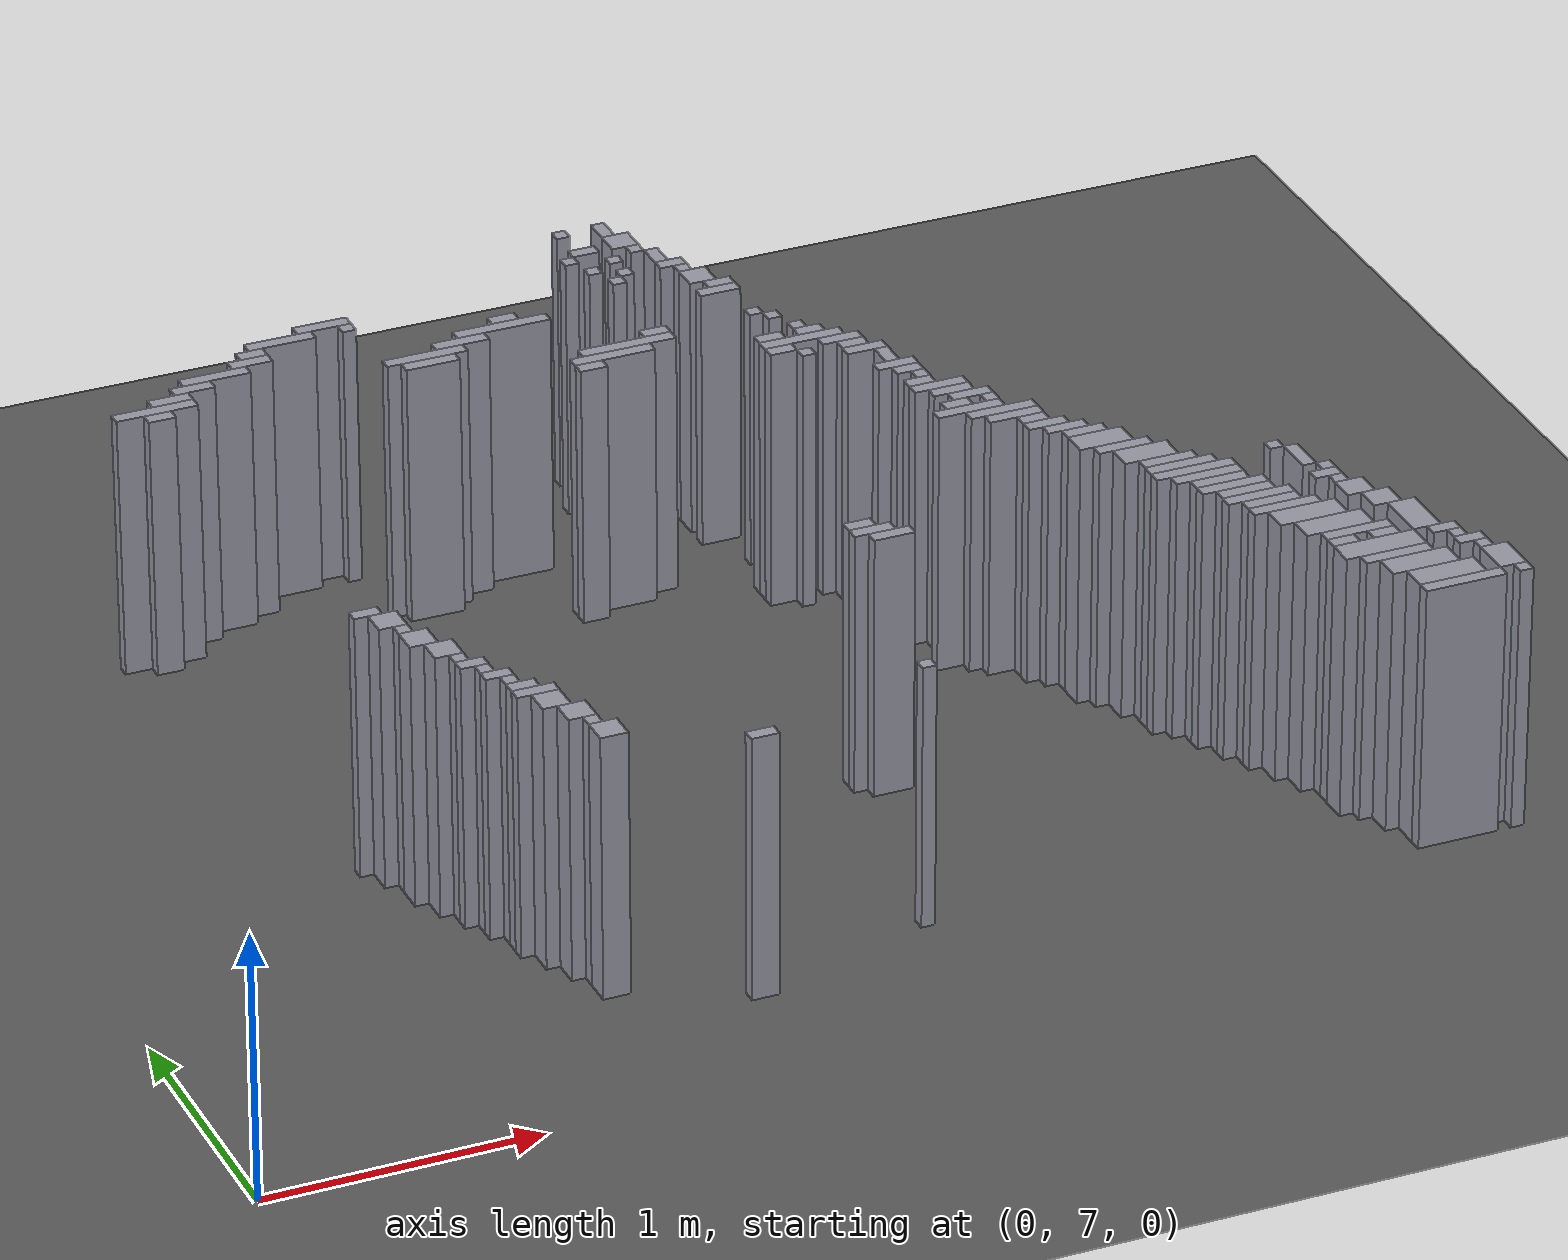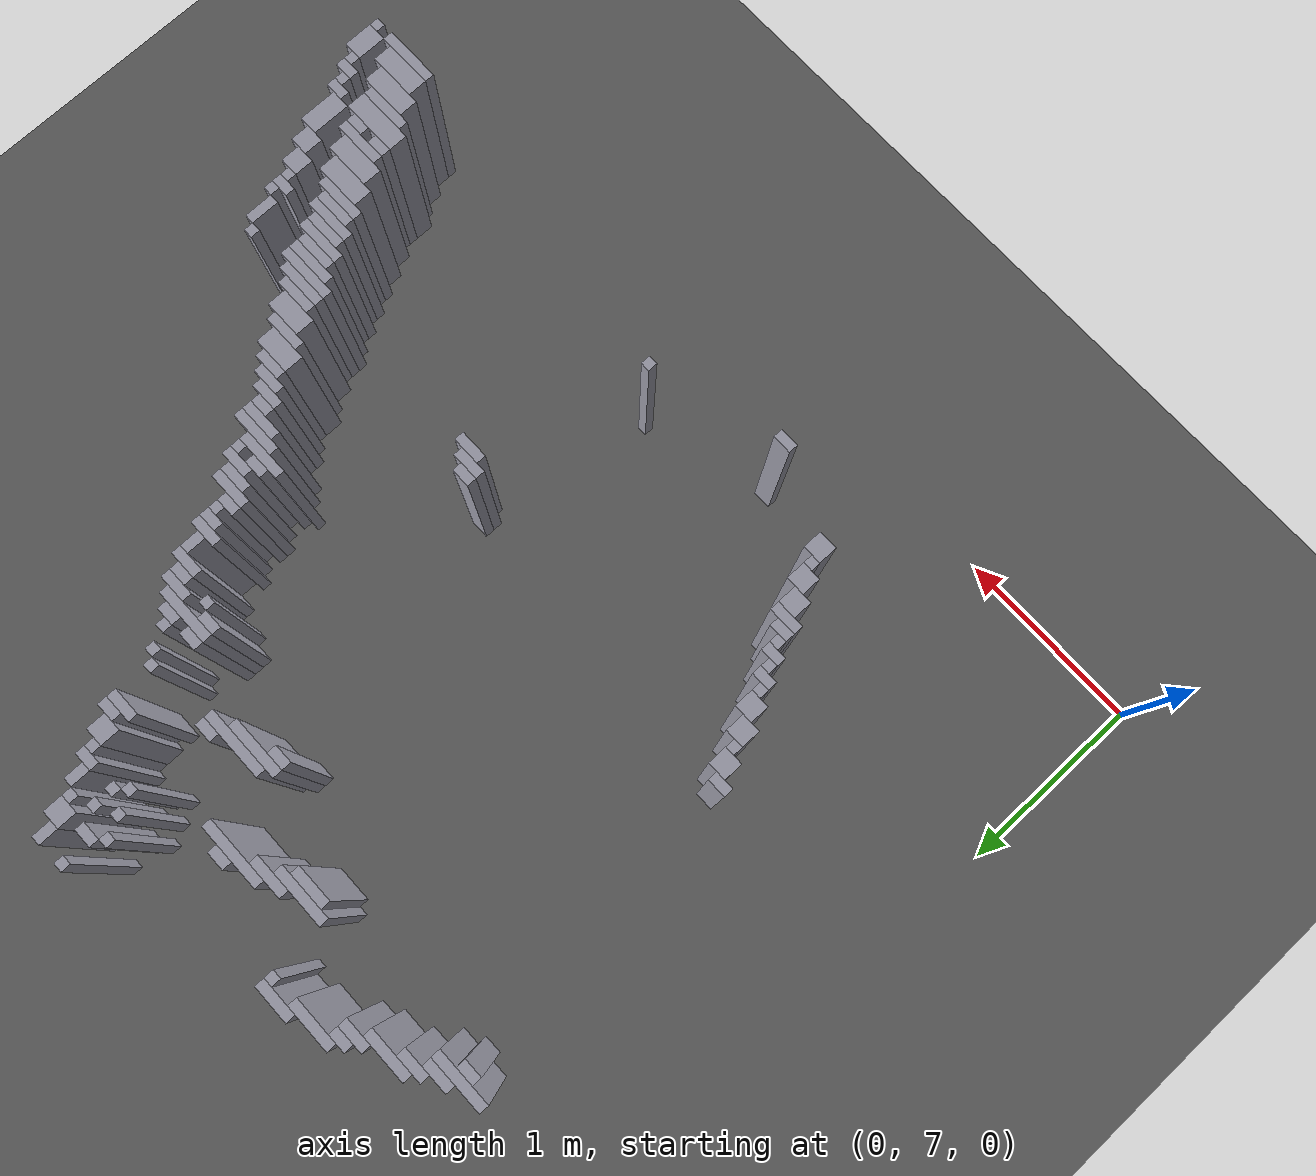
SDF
<sdf version="1.8">
 <world name="dimi">
  <model name="ground">
   <static>true</static>
   <link name="ground_link">
    <collision name="c"><geometry><plane><normal>0 0 1</normal><size>60 60</size></plane></geometry></collision>
    <visual name="v">
     <geometry><plane><normal>0 0 1</normal><size>60 60</size></plane></geometry>
     <material><ambient>0.3 0.3 0.3 1</ambient><diffuse>0.35 0.35 0.35 1</diffuse></material>
    </visual>
   </link>
  </model>
  <model name="walls">
   <static>true</static>
   <link name="wall_0">
    <pose>2.7080 11.0200 0.5000 0 0 0</pose>
    <collision name="c"><geometry><box><size>0.0500 0.0500 1.0000</size></box></geometry></collision>
    <visual name="v">
     <geometry><box><size>0.0500 0.0500 1.0000</size></box></geometry>
     <material><ambient>0.5 0.5 0.55 1</ambient><diffuse>0.6 0.6 0.65 1</diffuse></material>
    </visual>
   </link>
   <link name="wall_1">
    <pose>2.8580 10.9950 0.5000 0 0 0</pose>
    <collision name="c"><geometry><box><size>0.0500 0.1000 1.0000</size></box></geometry></collision>
    <visual name="v">
     <geometry><box><size>0.0500 0.1000 1.0000</size></box></geometry>
     <material><ambient>0.5 0.5 0.55 1</ambient><diffuse>0.6 0.6 0.65 1</diffuse></material>
    </visual>
   </link>
   <link name="wall_2">
    <pose>2.8830 10.8950 0.5000 0 0 0</pose>
    <collision name="c"><geometry><box><size>0.1000 0.1000 1.0000</size></box></geometry></collision>
    <visual name="v">
     <geometry><box><size>0.1000 0.1000 1.0000</size></box></geometry>
     <material><ambient>0.5 0.5 0.55 1</ambient><diffuse>0.6 0.6 0.65 1</diffuse></material>
    </visual>
   </link>
   <link name="wall_3">
    <pose>2.7330 10.8700 0.5000 0 0 0</pose>
    <collision name="c"><geometry><box><size>0.1000 0.0500 1.0000</size></box></geometry></collision>
    <visual name="v">
     <geometry><box><size>0.1000 0.0500 1.0000</size></box></geometry>
     <material><ambient>0.5 0.5 0.55 1</ambient><diffuse>0.6 0.6 0.65 1</diffuse></material>
    </visual>
   </link>
   <link name="wall_4">
    <pose>2.6580 10.8200 0.5000 0 0 0</pose>
    <collision name="c"><geometry><box><size>0.0500 0.0500 1.0000</size></box></geometry></collision>
    <visual name="v">
     <geometry><box><size>0.0500 0.0500 1.0000</size></box></geometry>
     <material><ambient>0.5 0.5 0.55 1</ambient><diffuse>0.6 0.6 0.65 1</diffuse></material>
    </visual>
   </link>
   <link name="wall_5">
    <pose>2.9080 10.8200 0.5000 0 0 0</pose>
    <collision name="c"><geometry><box><size>0.0500 0.0500 1.0000</size></box></geometry></collision>
    <visual name="v">
     <geometry><box><size>0.0500 0.0500 1.0000</size></box></geometry>
     <material><ambient>0.5 0.5 0.55 1</ambient><diffuse>0.6 0.6 0.65 1</diffuse></material>
    </visual>
   </link>
   <link name="wall_6">
    <pose>2.8080 10.7700 0.5000 0 0 0</pose>
    <collision name="c"><geometry><box><size>0.0500 0.0500 1.0000</size></box></geometry></collision>
    <visual name="v">
     <geometry><box><size>0.0500 0.0500 1.0000</size></box></geometry>
     <material><ambient>0.5 0.5 0.55 1</ambient><diffuse>0.6 0.6 0.65 1</diffuse></material>
    </visual>
   </link>
   <link name="wall_7">
    <pose>2.9580 10.7450 0.5000 0 0 0</pose>
    <collision name="c"><geometry><box><size>0.0500 0.1000 1.0000</size></box></geometry></collision>
    <visual name="v">
     <geometry><box><size>0.0500 0.1000 1.0000</size></box></geometry>
     <material><ambient>0.5 0.5 0.55 1</ambient><diffuse>0.6 0.6 0.65 1</diffuse></material>
    </visual>
   </link>
   <link name="wall_8">
    <pose>1.6830 10.7200 0.5000 0 0 0</pose>
    <collision name="c"><geometry><box><size>0.2000 0.0500 1.0000</size></box></geometry></collision>
    <visual name="v">
     <geometry><box><size>0.2000 0.0500 1.0000</size></box></geometry>
     <material><ambient>0.5 0.5 0.55 1</ambient><diffuse>0.6 0.6 0.65 1</diffuse></material>
    </visual>
   </link>
   <link name="wall_9">
    <pose>2.7080 10.7200 0.5000 0 0 0</pose>
    <collision name="c"><geometry><box><size>0.0500 0.0500 1.0000</size></box></geometry></collision>
    <visual name="v">
     <geometry><box><size>0.0500 0.0500 1.0000</size></box></geometry>
     <material><ambient>0.5 0.5 0.55 1</ambient><diffuse>0.6 0.6 0.65 1</diffuse></material>
    </visual>
   </link>
   <link name="wall_10">
    <pose>1.5080 10.6700 0.5000 0 0 0</pose>
    <collision name="c"><geometry><box><size>0.2500 0.0500 1.0000</size></box></geometry></collision>
    <visual name="v">
     <geometry><box><size>0.2500 0.0500 1.0000</size></box></geometry>
     <material><ambient>0.5 0.5 0.55 1</ambient><diffuse>0.6 0.6 0.65 1</diffuse></material>
    </visual>
   </link>
   <link name="wall_11">
    <pose>1.7580 10.6700 0.5000 0 0 0</pose>
    <collision name="c"><geometry><box><size>0.0500 0.0500 1.0000</size></box></geometry></collision>
    <visual name="v">
     <geometry><box><size>0.0500 0.0500 1.0000</size></box></geometry>
     <material><ambient>0.5 0.5 0.55 1</ambient><diffuse>0.6 0.6 0.65 1</diffuse></material>
    </visual>
   </link>
   <link name="wall_12">
    <pose>2.8080 10.6700 0.5000 0 0 0</pose>
    <collision name="c"><geometry><box><size>0.0500 0.0500 1.0000</size></box></geometry></collision>
    <visual name="v">
     <geometry><box><size>0.0500 0.0500 1.0000</size></box></geometry>
     <material><ambient>0.5 0.5 0.55 1</ambient><diffuse>0.6 0.6 0.65 1</diffuse></material>
    </visual>
   </link>
   <link name="wall_13">
    <pose>2.9830 10.6700 0.5000 0 0 0</pose>
    <collision name="c"><geometry><box><size>0.1000 0.0500 1.0000</size></box></geometry></collision>
    <visual name="v">
     <geometry><box><size>0.1000 0.0500 1.0000</size></box></geometry>
     <material><ambient>0.5 0.5 0.55 1</ambient><diffuse>0.6 0.6 0.65 1</diffuse></material>
    </visual>
   </link>
   <link name="wall_14">
    <pose>1.3830 10.6200 0.5000 0 0 0</pose>
    <collision name="c"><geometry><box><size>0.1000 0.0500 1.0000</size></box></geometry></collision>
    <visual name="v">
     <geometry><box><size>0.1000 0.0500 1.0000</size></box></geometry>
     <material><ambient>0.5 0.5 0.55 1</ambient><diffuse>0.6 0.6 0.65 1</diffuse></material>
    </visual>
   </link>
   <link name="wall_15">
    <pose>2.7580 10.6200 0.5000 0 0 0</pose>
    <collision name="c"><geometry><box><size>0.0500 0.0500 1.0000</size></box></geometry></collision>
    <visual name="v">
     <geometry><box><size>0.0500 0.0500 1.0000</size></box></geometry>
     <material><ambient>0.5 0.5 0.55 1</ambient><diffuse>0.6 0.6 0.65 1</diffuse></material>
    </visual>
   </link>
   <link name="wall_16">
    <pose>3.0080 10.6200 0.5000 0 0 0</pose>
    <collision name="c"><geometry><box><size>0.0500 0.0500 1.0000</size></box></geometry></collision>
    <visual name="v">
     <geometry><box><size>0.0500 0.0500 1.0000</size></box></geometry>
     <material><ambient>0.5 0.5 0.55 1</ambient><diffuse>0.6 0.6 0.65 1</diffuse></material>
    </visual>
   </link>
   <link name="wall_17">
    <pose>1.3580 10.5700 0.5000 0 0 0</pose>
    <collision name="c"><geometry><box><size>0.1500 0.0500 1.0000</size></box></geometry></collision>
    <visual name="v">
     <geometry><box><size>0.1500 0.0500 1.0000</size></box></geometry>
     <material><ambient>0.5 0.5 0.55 1</ambient><diffuse>0.6 0.6 0.65 1</diffuse></material>
    </visual>
   </link>
   <link name="wall_18">
    <pose>3.0330 10.5450 0.5000 0 0 0</pose>
    <collision name="c"><geometry><box><size>0.1000 0.1000 1.0000</size></box></geometry></collision>
    <visual name="v">
     <geometry><box><size>0.1000 0.1000 1.0000</size></box></geometry>
     <material><ambient>0.5 0.5 0.55 1</ambient><diffuse>0.6 0.6 0.65 1</diffuse></material>
    </visual>
   </link>
   <link name="wall_19">
    <pose>1.2080 10.5200 0.5000 0 0 0</pose>
    <collision name="c"><geometry><box><size>0.2500 0.0500 1.0000</size></box></geometry></collision>
    <visual name="v">
     <geometry><box><size>0.2500 0.0500 1.0000</size></box></geometry>
     <material><ambient>0.5 0.5 0.55 1</ambient><diffuse>0.6 0.6 0.65 1</diffuse></material>
    </visual>
   </link>
   <link name="wall_20">
    <pose>2.2830 10.5200 0.5000 0 0 0</pose>
    <collision name="c"><geometry><box><size>0.1000 0.0500 1.0000</size></box></geometry></collision>
    <visual name="v">
     <geometry><box><size>0.1000 0.0500 1.0000</size></box></geometry>
     <material><ambient>0.5 0.5 0.55 1</ambient><diffuse>0.6 0.6 0.65 1</diffuse></material>
    </visual>
   </link>
   <link name="wall_21">
    <pose>1.1080 10.4700 0.5000 0 0 0</pose>
    <collision name="c"><geometry><box><size>0.1500 0.0500 1.0000</size></box></geometry></collision>
    <visual name="v">
     <geometry><box><size>0.1500 0.0500 1.0000</size></box></geometry>
     <material><ambient>0.5 0.5 0.55 1</ambient><diffuse>0.6 0.6 0.65 1</diffuse></material>
    </visual>
   </link>
   <link name="wall_22">
    <pose>2.2580 10.4700 0.5000 0 0 0</pose>
    <collision name="c"><geometry><box><size>0.3500 0.0500 1.0000</size></box></geometry></collision>
    <visual name="v">
     <geometry><box><size>0.3500 0.0500 1.0000</size></box></geometry>
     <material><ambient>0.5 0.5 0.55 1</ambient><diffuse>0.6 0.6 0.65 1</diffuse></material>
    </visual>
   </link>
   <link name="wall_23">
    <pose>3.0830 10.4700 0.5000 0 0 0</pose>
    <collision name="c"><geometry><box><size>0.1000 0.0500 1.0000</size></box></geometry></collision>
    <visual name="v">
     <geometry><box><size>0.1000 0.0500 1.0000</size></box></geometry>
     <material><ambient>0.5 0.5 0.55 1</ambient><diffuse>0.6 0.6 0.65 1</diffuse></material>
    </visual>
   </link>
   <link name="wall_24">
    <pose>1.0080 10.4200 0.5000 0 0 0</pose>
    <collision name="c"><geometry><box><size>0.1500 0.0500 1.0000</size></box></geometry></collision>
    <visual name="v">
     <geometry><box><size>0.1500 0.0500 1.0000</size></box></geometry>
     <material><ambient>0.5 0.5 0.55 1</ambient><diffuse>0.6 0.6 0.65 1</diffuse></material>
    </visual>
   </link>
   <link name="wall_25">
    <pose>2.0830 10.4200 0.5000 0 0 0</pose>
    <collision name="c"><geometry><box><size>0.2000 0.0500 1.0000</size></box></geometry></collision>
    <visual name="v">
     <geometry><box><size>0.2000 0.0500 1.0000</size></box></geometry>
     <material><ambient>0.5 0.5 0.55 1</ambient><diffuse>0.6 0.6 0.65 1</diffuse></material>
    </visual>
   </link>
   <link name="wall_26">
    <pose>3.0580 10.4200 0.5000 0 0 0</pose>
    <collision name="c"><geometry><box><size>0.1500 0.0500 1.0000</size></box></geometry></collision>
    <visual name="v">
     <geometry><box><size>0.1500 0.0500 1.0000</size></box></geometry>
     <material><ambient>0.5 0.5 0.55 1</ambient><diffuse>0.6 0.6 0.65 1</diffuse></material>
    </visual>
   </link>
   <link name="wall_27">
    <pose>0.9330 10.3700 0.5000 0 0 0</pose>
    <collision name="c"><geometry><box><size>0.3000 0.0500 1.0000</size></box></geometry></collision>
    <visual name="v">
     <geometry><box><size>0.3000 0.0500 1.0000</size></box></geometry>
     <material><ambient>0.5 0.5 0.55 1</ambient><diffuse>0.6 0.6 0.65 1</diffuse></material>
    </visual>
   </link>
   <link name="wall_28">
    <pose>1.9330 10.3700 0.5000 0 0 0</pose>
    <collision name="c"><geometry><box><size>0.3000 0.0500 1.0000</size></box></geometry></collision>
    <visual name="v">
     <geometry><box><size>0.3000 0.0500 1.0000</size></box></geometry>
     <material><ambient>0.5 0.5 0.55 1</ambient><diffuse>0.6 0.6 0.65 1</diffuse></material>
    </visual>
   </link>
   <link name="wall_31">
    <pose>0.9330 10.3200 0.5000 0 0 0</pose>
    <collision name="c"><geometry><box><size>0.1000 0.0500 1.0000</size></box></geometry></collision>
    <visual name="v">
     <geometry><box><size>0.1000 0.0500 1.0000</size></box></geometry>
     <material><ambient>0.5 0.5 0.55 1</ambient><diffuse>0.6 0.6 0.65 1</diffuse></material>
    </visual>
   </link>
   <link name="wall_32">
    <pose>1.9330 10.3200 0.5000 0 0 0</pose>
    <collision name="c"><geometry><box><size>0.2000 0.0500 1.0000</size></box></geometry></collision>
    <visual name="v">
     <geometry><box><size>0.2000 0.0500 1.0000</size></box></geometry>
     <material><ambient>0.5 0.5 0.55 1</ambient><diffuse>0.6 0.6 0.65 1</diffuse></material>
    </visual>
   </link>
   <link name="wall_35">
    <pose>2.7330 10.2200 0.5000 0 0 0</pose>
    <collision name="c"><geometry><box><size>0.1000 0.0500 1.0000</size></box></geometry></collision>
    <visual name="v">
     <geometry><box><size>0.1000 0.0500 1.0000</size></box></geometry>
     <material><ambient>0.5 0.5 0.55 1</ambient><diffuse>0.6 0.6 0.65 1</diffuse></material>
    </visual>
   </link>
   <link name="wall_36">
    <pose>3.1080 10.2200 0.5000 0 0 0</pose>
    <collision name="c"><geometry><box><size>0.0500 0.0500 1.0000</size></box></geometry></collision>
    <visual name="v">
     <geometry><box><size>0.0500 0.0500 1.0000</size></box></geometry>
     <material><ambient>0.5 0.5 0.55 1</ambient><diffuse>0.6 0.6 0.65 1</diffuse></material>
    </visual>
   </link>
   <link name="wall_40">
    <pose>2.6080 10.1700 0.5000 0 0 0</pose>
    <collision name="c"><geometry><box><size>0.3500 0.0500 1.0000</size></box></geometry></collision>
    <visual name="v">
     <geometry><box><size>0.3500 0.0500 1.0000</size></box></geometry>
     <material><ambient>0.5 0.5 0.55 1</ambient><diffuse>0.6 0.6 0.65 1</diffuse></material>
    </visual>
   </link>
   <link name="wall_41">
    <pose>3.1580 10.1700 0.5000 0 0 0</pose>
    <collision name="c"><geometry><box><size>0.0500 0.0500 1.0000</size></box></geometry></collision>
    <visual name="v">
     <geometry><box><size>0.0500 0.0500 1.0000</size></box></geometry>
     <material><ambient>0.5 0.5 0.55 1</ambient><diffuse>0.6 0.6 0.65 1</diffuse></material>
    </visual>
   </link>
   <link name="wall_43">
    <pose>2.5330 10.1200 0.5000 0 0 0</pose>
    <collision name="c"><geometry><box><size>0.3000 0.0500 1.0000</size></box></geometry></collision>
    <visual name="v">
     <geometry><box><size>0.3000 0.0500 1.0000</size></box></geometry>
     <material><ambient>0.5 0.5 0.55 1</ambient><diffuse>0.6 0.6 0.65 1</diffuse></material>
    </visual>
   </link>
   <link name="wall_45">
    <pose>2.4330 10.0700 0.5000 0 0 0</pose>
    <collision name="c"><geometry><box><size>0.1000 0.0500 1.0000</size></box></geometry></collision>
    <visual name="v">
     <geometry><box><size>0.1000 0.0500 1.0000</size></box></geometry>
     <material><ambient>0.5 0.5 0.55 1</ambient><diffuse>0.6 0.6 0.65 1</diffuse></material>
    </visual>
   </link>
   <link name="wall_46">
    <pose>3.2080 10.0700 0.5000 0 0 0</pose>
    <collision name="c"><geometry><box><size>0.0500 0.0500 1.0000</size></box></geometry></collision>
    <visual name="v">
     <geometry><box><size>0.0500 0.0500 1.0000</size></box></geometry>
     <material><ambient>0.5 0.5 0.55 1</ambient><diffuse>0.6 0.6 0.65 1</diffuse></material>
    </visual>
   </link>
   <link name="wall_49">
    <pose>3.0830 10.0200 0.5000 0 0 0</pose>
    <collision name="c"><geometry><box><size>0.1000 0.0500 1.0000</size></box></geometry></collision>
    <visual name="v">
     <geometry><box><size>0.1000 0.0500 1.0000</size></box></geometry>
     <material><ambient>0.5 0.5 0.55 1</ambient><diffuse>0.6 0.6 0.65 1</diffuse></material>
    </visual>
   </link>
   <link name="wall_50">
    <pose>3.2330 10.0200 0.5000 0 0 0</pose>
    <collision name="c"><geometry><box><size>0.1000 0.0500 1.0000</size></box></geometry></collision>
    <visual name="v">
     <geometry><box><size>0.1000 0.0500 1.0000</size></box></geometry>
     <material><ambient>0.5 0.5 0.55 1</ambient><diffuse>0.6 0.6 0.65 1</diffuse></material>
    </visual>
   </link>
   <link name="wall_53">
    <pose>3.1830 9.9700 0.5000 0 0 0</pose>
    <collision name="c"><geometry><box><size>0.3000 0.0500 1.0000</size></box></geometry></collision>
    <visual name="v">
     <geometry><box><size>0.3000 0.0500 1.0000</size></box></geometry>
     <material><ambient>0.5 0.5 0.55 1</ambient><diffuse>0.6 0.6 0.65 1</diffuse></material>
    </visual>
   </link>
   <link name="wall_55">
    <pose>3.0830 9.9200 0.5000 0 0 0</pose>
    <collision name="c"><geometry><box><size>0.1000 0.0500 1.0000</size></box></geometry></collision>
    <visual name="v">
     <geometry><box><size>0.1000 0.0500 1.0000</size></box></geometry>
     <material><ambient>0.5 0.5 0.55 1</ambient><diffuse>0.6 0.6 0.65 1</diffuse></material>
    </visual>
   </link>
   <link name="wall_56">
    <pose>3.3080 9.9200 0.5000 0 0 0</pose>
    <collision name="c"><geometry><box><size>0.1500 0.0500 1.0000</size></box></geometry></collision>
    <visual name="v">
     <geometry><box><size>0.1500 0.0500 1.0000</size></box></geometry>
     <material><ambient>0.5 0.5 0.55 1</ambient><diffuse>0.6 0.6 0.65 1</diffuse></material>
    </visual>
   </link>
   <link name="wall_59">
    <pose>3.1580 9.8700 0.5000 0 0 0</pose>
    <collision name="c"><geometry><box><size>0.0500 0.0500 1.0000</size></box></geometry></collision>
    <visual name="v">
     <geometry><box><size>0.0500 0.0500 1.0000</size></box></geometry>
     <material><ambient>0.5 0.5 0.55 1</ambient><diffuse>0.6 0.6 0.65 1</diffuse></material>
    </visual>
   </link>
   <link name="wall_60">
    <pose>3.3330 9.8700 0.5000 0 0 0</pose>
    <collision name="c"><geometry><box><size>0.1000 0.0500 1.0000</size></box></geometry></collision>
    <visual name="v">
     <geometry><box><size>0.1000 0.0500 1.0000</size></box></geometry>
     <material><ambient>0.5 0.5 0.55 1</ambient><diffuse>0.6 0.6 0.65 1</diffuse></material>
    </visual>
   </link>
   <link name="wall_63">
    <pose>3.3580 9.8200 0.5000 0 0 0</pose>
    <collision name="c"><geometry><box><size>0.1500 0.0500 1.0000</size></box></geometry></collision>
    <visual name="v">
     <geometry><box><size>0.1500 0.0500 1.0000</size></box></geometry>
     <material><ambient>0.5 0.5 0.55 1</ambient><diffuse>0.6 0.6 0.65 1</diffuse></material>
    </visual>
   </link>
   <link name="wall_66">
    <pose>3.4080 9.7450 0.5000 0 0 0</pose>
    <collision name="c"><geometry><box><size>0.0500 0.1000 1.0000</size></box></geometry></collision>
    <visual name="v">
     <geometry><box><size>0.0500 0.1000 1.0000</size></box></geometry>
     <material><ambient>0.5 0.5 0.55 1</ambient><diffuse>0.6 0.6 0.65 1</diffuse></material>
    </visual>
   </link>
   <link name="wall_75">
    <pose>3.4080 9.6700 0.5000 0 0 0</pose>
    <collision name="c"><geometry><box><size>0.1500 0.0500 1.0000</size></box></geometry></collision>
    <visual name="v">
     <geometry><box><size>0.1500 0.0500 1.0000</size></box></geometry>
     <material><ambient>0.5 0.5 0.55 1</ambient><diffuse>0.6 0.6 0.65 1</diffuse></material>
    </visual>
   </link>
   <link name="wall_80">
    <pose>3.4330 9.6200 0.5000 0 0 0</pose>
    <collision name="c"><geometry><box><size>0.1000 0.0500 1.0000</size></box></geometry></collision>
    <visual name="v">
     <geometry><box><size>0.1000 0.0500 1.0000</size></box></geometry>
     <material><ambient>0.5 0.5 0.55 1</ambient><diffuse>0.6 0.6 0.65 1</diffuse></material>
    </visual>
   </link>
   <link name="wall_84">
    <pose>3.4580 9.5700 0.5000 0 0 0</pose>
    <collision name="c"><geometry><box><size>0.0500 0.0500 1.0000</size></box></geometry></collision>
    <visual name="v">
     <geometry><box><size>0.0500 0.0500 1.0000</size></box></geometry>
     <material><ambient>0.5 0.5 0.55 1</ambient><diffuse>0.6 0.6 0.65 1</diffuse></material>
    </visual>
   </link>
   <link name="wall_88">
    <pose>3.4330 9.5200 0.5000 0 0 0</pose>
    <collision name="c"><geometry><box><size>0.1000 0.0500 1.0000</size></box></geometry></collision>
    <visual name="v">
     <geometry><box><size>0.1000 0.0500 1.0000</size></box></geometry>
     <material><ambient>0.5 0.5 0.55 1</ambient><diffuse>0.6 0.6 0.65 1</diffuse></material>
    </visual>
   </link>
   <link name="wall_92">
    <pose>3.4830 9.4700 0.5000 0 0 0</pose>
    <collision name="c"><geometry><box><size>0.2000 0.0500 1.0000</size></box></geometry></collision>
    <visual name="v">
     <geometry><box><size>0.2000 0.0500 1.0000</size></box></geometry>
     <material><ambient>0.5 0.5 0.55 1</ambient><diffuse>0.6 0.6 0.65 1</diffuse></material>
    </visual>
   </link>
   <link name="wall_94">
    <pose>3.5080 9.4200 0.5000 0 0 0</pose>
    <collision name="c"><geometry><box><size>0.1500 0.0500 1.0000</size></box></geometry></collision>
    <visual name="v">
     <geometry><box><size>0.1500 0.0500 1.0000</size></box></geometry>
     <material><ambient>0.5 0.5 0.55 1</ambient><diffuse>0.6 0.6 0.65 1</diffuse></material>
    </visual>
   </link>
   <link name="wall_96">
    <pose>3.5580 9.3700 0.5000 0 0 0</pose>
    <collision name="c"><geometry><box><size>0.1500 0.0500 1.0000</size></box></geometry></collision>
    <visual name="v">
     <geometry><box><size>0.1500 0.0500 1.0000</size></box></geometry>
     <material><ambient>0.5 0.5 0.55 1</ambient><diffuse>0.6 0.6 0.65 1</diffuse></material>
    </visual>
   </link>
   <link name="wall_99">
    <pose>3.4830 9.3200 0.5000 0 0 0</pose>
    <collision name="c"><geometry><box><size>0.1000 0.0500 1.0000</size></box></geometry></collision>
    <visual name="v">
     <geometry><box><size>0.1000 0.0500 1.0000</size></box></geometry>
     <material><ambient>0.5 0.5 0.55 1</ambient><diffuse>0.6 0.6 0.65 1</diffuse></material>
    </visual>
   </link>
   <link name="wall_100">
    <pose>3.6080 9.3200 0.5000 0 0 0</pose>
    <collision name="c"><geometry><box><size>0.0500 0.0500 1.0000</size></box></geometry></collision>
    <visual name="v">
     <geometry><box><size>0.0500 0.0500 1.0000</size></box></geometry>
     <material><ambient>0.5 0.5 0.55 1</ambient><diffuse>0.6 0.6 0.65 1</diffuse></material>
    </visual>
   </link>
   <link name="wall_103">
    <pose>3.5080 9.2700 0.5000 0 0 0</pose>
    <collision name="c"><geometry><box><size>0.2500 0.0500 1.0000</size></box></geometry></collision>
    <visual name="v">
     <geometry><box><size>0.2500 0.0500 1.0000</size></box></geometry>
     <material><ambient>0.5 0.5 0.55 1</ambient><diffuse>0.6 0.6 0.65 1</diffuse></material>
    </visual>
   </link>
   <link name="wall_107">
    <pose>3.6080 9.2200 0.5000 0 0 0</pose>
    <collision name="c"><geometry><box><size>0.2500 0.0500 1.0000</size></box></geometry></collision>
    <visual name="v">
     <geometry><box><size>0.2500 0.0500 1.0000</size></box></geometry>
     <material><ambient>0.5 0.5 0.55 1</ambient><diffuse>0.6 0.6 0.65 1</diffuse></material>
    </visual>
   </link>
   <link name="wall_110">
    <pose>3.6330 9.1700 0.5000 0 0 0</pose>
    <collision name="c"><geometry><box><size>0.2000 0.0500 1.0000</size></box></geometry></collision>
    <visual name="v">
     <geometry><box><size>0.2000 0.0500 1.0000</size></box></geometry>
     <material><ambient>0.5 0.5 0.55 1</ambient><diffuse>0.6 0.6 0.65 1</diffuse></material>
    </visual>
   </link>
   <link name="wall_113">
    <pose>3.6830 9.1200 0.5000 0 0 0</pose>
    <collision name="c"><geometry><box><size>0.1000 0.0500 1.0000</size></box></geometry></collision>
    <visual name="v">
     <geometry><box><size>0.1000 0.0500 1.0000</size></box></geometry>
     <material><ambient>0.5 0.5 0.55 1</ambient><diffuse>0.6 0.6 0.65 1</diffuse></material>
    </visual>
   </link>
   <link name="wall_117">
    <pose>3.7080 9.0700 0.5000 0 0 0</pose>
    <collision name="c"><geometry><box><size>0.1500 0.0500 1.0000</size></box></geometry></collision>
    <visual name="v">
     <geometry><box><size>0.1500 0.0500 1.0000</size></box></geometry>
     <material><ambient>0.5 0.5 0.55 1</ambient><diffuse>0.6 0.6 0.65 1</diffuse></material>
    </visual>
   </link>
   <link name="wall_121">
    <pose>3.7580 9.0200 0.5000 0 0 0</pose>
    <collision name="c"><geometry><box><size>0.1500 0.0500 1.0000</size></box></geometry></collision>
    <visual name="v">
     <geometry><box><size>0.1500 0.0500 1.0000</size></box></geometry>
     <material><ambient>0.5 0.5 0.55 1</ambient><diffuse>0.6 0.6 0.65 1</diffuse></material>
    </visual>
   </link>
   <link name="wall_126">
    <pose>3.8080 8.9700 0.5000 0 0 0</pose>
    <collision name="c"><geometry><box><size>0.1500 0.0500 1.0000</size></box></geometry></collision>
    <visual name="v">
     <geometry><box><size>0.1500 0.0500 1.0000</size></box></geometry>
     <material><ambient>0.5 0.5 0.55 1</ambient><diffuse>0.6 0.6 0.65 1</diffuse></material>
    </visual>
   </link>
   <link name="wall_131">
    <pose>3.8330 8.8950 0.5000 0 0 0</pose>
    <collision name="c"><geometry><box><size>0.2000 0.1000 1.0000</size></box></geometry></collision>
    <visual name="v">
     <geometry><box><size>0.2000 0.1000 1.0000</size></box></geometry>
     <material><ambient>0.5 0.5 0.55 1</ambient><diffuse>0.6 0.6 0.65 1</diffuse></material>
    </visual>
   </link>
   <link name="wall_140">
    <pose>3.8830 8.8200 0.5000 0 0 0</pose>
    <collision name="c"><geometry><box><size>0.2000 0.0500 1.0000</size></box></geometry></collision>
    <visual name="v">
     <geometry><box><size>0.2000 0.0500 1.0000</size></box></geometry>
     <material><ambient>0.5 0.5 0.55 1</ambient><diffuse>0.6 0.6 0.65 1</diffuse></material>
    </visual>
   </link>
   <link name="wall_144">
    <pose>1.0830 8.7700 0.5000 0 0 0</pose>
    <collision name="c"><geometry><box><size>0.1000 0.0500 1.0000</size></box></geometry></collision>
    <visual name="v">
     <geometry><box><size>0.1000 0.0500 1.0000</size></box></geometry>
     <material><ambient>0.5 0.5 0.55 1</ambient><diffuse>0.6 0.6 0.65 1</diffuse></material>
    </visual>
   </link>
   <link name="wall_145">
    <pose>3.9330 8.7450 0.5000 0 0 0</pose>
    <collision name="c"><geometry><box><size>0.2000 0.1000 1.0000</size></box></geometry></collision>
    <visual name="v">
     <geometry><box><size>0.2000 0.1000 1.0000</size></box></geometry>
     <material><ambient>0.5 0.5 0.55 1</ambient><diffuse>0.6 0.6 0.65 1</diffuse></material>
    </visual>
   </link>
   <link name="wall_149">
    <pose>1.1330 8.6950 0.5000 0 0 0</pose>
    <collision name="c"><geometry><box><size>0.1000 0.1000 1.0000</size></box></geometry></collision>
    <visual name="v">
     <geometry><box><size>0.1000 0.1000 1.0000</size></box></geometry>
     <material><ambient>0.5 0.5 0.55 1</ambient><diffuse>0.6 0.6 0.65 1</diffuse></material>
    </visual>
   </link>
   <link name="wall_154">
    <pose>2.8330 8.6700 0.5000 0 0 0</pose>
    <collision name="c"><geometry><box><size>0.1000 0.0500 1.0000</size></box></geometry></collision>
    <visual name="v">
     <geometry><box><size>0.1000 0.0500 1.0000</size></box></geometry>
     <material><ambient>0.5 0.5 0.55 1</ambient><diffuse>0.6 0.6 0.65 1</diffuse></material>
    </visual>
   </link>
   <link name="wall_155">
    <pose>3.9830 8.6700 0.5000 0 0 0</pose>
    <collision name="c"><geometry><box><size>0.2000 0.0500 1.0000</size></box></geometry></collision>
    <visual name="v">
     <geometry><box><size>0.2000 0.0500 1.0000</size></box></geometry>
     <material><ambient>0.5 0.5 0.55 1</ambient><diffuse>0.6 0.6 0.65 1</diffuse></material>
    </visual>
   </link>
   <link name="wall_158">
    <pose>1.1580 8.6200 0.5000 0 0 0</pose>
    <collision name="c"><geometry><box><size>0.0500 0.0500 1.0000</size></box></geometry></collision>
    <visual name="v">
     <geometry><box><size>0.0500 0.0500 1.0000</size></box></geometry>
     <material><ambient>0.5 0.5 0.55 1</ambient><diffuse>0.6 0.6 0.65 1</diffuse></material>
    </visual>
   </link>
   <link name="wall_159">
    <pose>2.8580 8.6200 0.5000 0 0 0</pose>
    <collision name="c"><geometry><box><size>0.1500 0.0500 1.0000</size></box></geometry></collision>
    <visual name="v">
     <geometry><box><size>0.1500 0.0500 1.0000</size></box></geometry>
     <material><ambient>0.5 0.5 0.55 1</ambient><diffuse>0.6 0.6 0.65 1</diffuse></material>
    </visual>
   </link>
   <link name="wall_160">
    <pose>4.0080 8.6200 0.5000 0 0 0</pose>
    <collision name="c"><geometry><box><size>0.2500 0.0500 1.0000</size></box></geometry></collision>
    <visual name="v">
     <geometry><box><size>0.2500 0.0500 1.0000</size></box></geometry>
     <material><ambient>0.5 0.5 0.55 1</ambient><diffuse>0.6 0.6 0.65 1</diffuse></material>
    </visual>
   </link>
   <link name="wall_161">
    <pose>4.3580 8.6200 0.5000 0 0 0</pose>
    <collision name="c"><geometry><box><size>0.0500 0.0500 1.0000</size></box></geometry></collision>
    <visual name="v">
     <geometry><box><size>0.0500 0.0500 1.0000</size></box></geometry>
     <material><ambient>0.5 0.5 0.55 1</ambient><diffuse>0.6 0.6 0.65 1</diffuse></material>
    </visual>
   </link>
   <link name="wall_164">
    <pose>1.1830 8.5450 0.5000 0 0 0</pose>
    <collision name="c"><geometry><box><size>0.1000 0.1000 1.0000</size></box></geometry></collision>
    <visual name="v">
     <geometry><box><size>0.1000 0.1000 1.0000</size></box></geometry>
     <material><ambient>0.5 0.5 0.55 1</ambient><diffuse>0.6 0.6 0.65 1</diffuse></material>
    </visual>
   </link>
   <link name="wall_165">
    <pose>2.9080 8.5700 0.5000 0 0 0</pose>
    <collision name="c"><geometry><box><size>0.1500 0.0500 1.0000</size></box></geometry></collision>
    <visual name="v">
     <geometry><box><size>0.1500 0.0500 1.0000</size></box></geometry>
     <material><ambient>0.5 0.5 0.55 1</ambient><diffuse>0.6 0.6 0.65 1</diffuse></material>
    </visual>
   </link>
   <link name="wall_166">
    <pose>4.0330 8.5700 0.5000 0 0 0</pose>
    <collision name="c"><geometry><box><size>0.3000 0.0500 1.0000</size></box></geometry></collision>
    <visual name="v">
     <geometry><box><size>0.3000 0.0500 1.0000</size></box></geometry>
     <material><ambient>0.5 0.5 0.55 1</ambient><diffuse>0.6 0.6 0.65 1</diffuse></material>
    </visual>
   </link>
   <link name="wall_167">
    <pose>4.4080 8.5200 0.5000 0 0 0</pose>
    <collision name="c"><geometry><box><size>0.0500 0.1500 1.0000</size></box></geometry></collision>
    <visual name="v">
     <geometry><box><size>0.0500 0.1500 1.0000</size></box></geometry>
     <material><ambient>0.5 0.5 0.55 1</ambient><diffuse>0.6 0.6 0.65 1</diffuse></material>
    </visual>
   </link>
   <link name="wall_171">
    <pose>4.0580 8.5200 0.5000 0 0 0</pose>
    <collision name="c"><geometry><box><size>0.2500 0.0500 1.0000</size></box></geometry></collision>
    <visual name="v">
     <geometry><box><size>0.2500 0.0500 1.0000</size></box></geometry>
     <material><ambient>0.5 0.5 0.55 1</ambient><diffuse>0.6 0.6 0.65 1</diffuse></material>
    </visual>
   </link>
   <link name="wall_173">
    <pose>1.2330 8.4450 0.5000 0 0 0</pose>
    <collision name="c"><geometry><box><size>0.1000 0.1000 1.0000</size></box></geometry></collision>
    <visual name="v">
     <geometry><box><size>0.1000 0.1000 1.0000</size></box></geometry>
     <material><ambient>0.5 0.5 0.55 1</ambient><diffuse>0.6 0.6 0.65 1</diffuse></material>
    </visual>
   </link>
   <link name="wall_174">
    <pose>4.0830 8.4700 0.5000 0 0 0</pose>
    <collision name="c"><geometry><box><size>0.2000 0.0500 1.0000</size></box></geometry></collision>
    <visual name="v">
     <geometry><box><size>0.2000 0.0500 1.0000</size></box></geometry>
     <material><ambient>0.5 0.5 0.55 1</ambient><diffuse>0.6 0.6 0.65 1</diffuse></material>
    </visual>
   </link>
   <link name="wall_179">
    <pose>4.1080 8.4200 0.5000 0 0 0</pose>
    <collision name="c"><geometry><box><size>0.2500 0.0500 1.0000</size></box></geometry></collision>
    <visual name="v">
     <geometry><box><size>0.2500 0.0500 1.0000</size></box></geometry>
     <material><ambient>0.5 0.5 0.55 1</ambient><diffuse>0.6 0.6 0.65 1</diffuse></material>
    </visual>
   </link>
   <link name="wall_180">
    <pose>4.4580 8.4200 0.5000 0 0 0</pose>
    <collision name="c"><geometry><box><size>0.0500 0.0500 1.0000</size></box></geometry></collision>
    <visual name="v">
     <geometry><box><size>0.0500 0.0500 1.0000</size></box></geometry>
     <material><ambient>0.5 0.5 0.55 1</ambient><diffuse>0.6 0.6 0.65 1</diffuse></material>
    </visual>
   </link>
   <link name="wall_186">
    <pose>1.2580 8.3700 0.5000 0 0 0</pose>
    <collision name="c"><geometry><box><size>0.0500 0.0500 1.0000</size></box></geometry></collision>
    <visual name="v">
     <geometry><box><size>0.0500 0.0500 1.0000</size></box></geometry>
     <material><ambient>0.5 0.5 0.55 1</ambient><diffuse>0.6 0.6 0.65 1</diffuse></material>
    </visual>
   </link>
   <link name="wall_187">
    <pose>4.1330 8.3700 0.5000 0 0 0</pose>
    <collision name="c"><geometry><box><size>0.2000 0.0500 1.0000</size></box></geometry></collision>
    <visual name="v">
     <geometry><box><size>0.2000 0.0500 1.0000</size></box></geometry>
     <material><ambient>0.5 0.5 0.55 1</ambient><diffuse>0.6 0.6 0.65 1</diffuse></material>
    </visual>
   </link>
   <link name="wall_188">
    <pose>4.4330 8.3700 0.5000 0 0 0</pose>
    <collision name="c"><geometry><box><size>0.1000 0.0500 1.0000</size></box></geometry></collision>
    <visual name="v">
     <geometry><box><size>0.1000 0.0500 1.0000</size></box></geometry>
     <material><ambient>0.5 0.5 0.55 1</ambient><diffuse>0.6 0.6 0.65 1</diffuse></material>
    </visual>
   </link>
   <link name="wall_192">
    <pose>1.2830 8.3200 0.5000 0 0 0</pose>
    <collision name="c"><geometry><box><size>0.1000 0.0500 1.0000</size></box></geometry></collision>
    <visual name="v">
     <geometry><box><size>0.1000 0.0500 1.0000</size></box></geometry>
     <material><ambient>0.5 0.5 0.55 1</ambient><diffuse>0.6 0.6 0.65 1</diffuse></material>
    </visual>
   </link>
   <link name="wall_193">
    <pose>4.1580 8.3200 0.5000 0 0 0</pose>
    <collision name="c"><geometry><box><size>0.2500 0.0500 1.0000</size></box></geometry></collision>
    <visual name="v">
     <geometry><box><size>0.2500 0.0500 1.0000</size></box></geometry>
     <material><ambient>0.5 0.5 0.55 1</ambient><diffuse>0.6 0.6 0.65 1</diffuse></material>
    </visual>
   </link>
   <link name="wall_194">
    <pose>4.4580 8.3200 0.5000 0 0 0</pose>
    <collision name="c"><geometry><box><size>0.0500 0.0500 1.0000</size></box></geometry></collision>
    <visual name="v">
     <geometry><box><size>0.0500 0.0500 1.0000</size></box></geometry>
     <material><ambient>0.5 0.5 0.55 1</ambient><diffuse>0.6 0.6 0.65 1</diffuse></material>
    </visual>
   </link>
   <link name="wall_199">
    <pose>1.3080 8.2700 0.5000 0 0 0</pose>
    <collision name="c"><geometry><box><size>0.0500 0.0500 1.0000</size></box></geometry></collision>
    <visual name="v">
     <geometry><box><size>0.0500 0.0500 1.0000</size></box></geometry>
     <material><ambient>0.5 0.5 0.55 1</ambient><diffuse>0.6 0.6 0.65 1</diffuse></material>
    </visual>
   </link>
   <link name="wall_200">
    <pose>4.1830 8.2700 0.5000 0 0 0</pose>
    <collision name="c"><geometry><box><size>0.2000 0.0500 1.0000</size></box></geometry></collision>
    <visual name="v">
     <geometry><box><size>0.2000 0.0500 1.0000</size></box></geometry>
     <material><ambient>0.5 0.5 0.55 1</ambient><diffuse>0.6 0.6 0.65 1</diffuse></material>
    </visual>
   </link>
   <link name="wall_201">
    <pose>4.4830 8.2450 0.5000 0 0 0</pose>
    <collision name="c"><geometry><box><size>0.1000 0.1000 1.0000</size></box></geometry></collision>
    <visual name="v">
     <geometry><box><size>0.1000 0.1000 1.0000</size></box></geometry>
     <material><ambient>0.5 0.5 0.55 1</ambient><diffuse>0.6 0.6 0.65 1</diffuse></material>
    </visual>
   </link>
   <link name="wall_206">
    <pose>1.3330 8.2200 0.5000 0 0 0</pose>
    <collision name="c"><geometry><box><size>0.1000 0.0500 1.0000</size></box></geometry></collision>
    <visual name="v">
     <geometry><box><size>0.1000 0.0500 1.0000</size></box></geometry>
     <material><ambient>0.5 0.5 0.55 1</ambient><diffuse>0.6 0.6 0.65 1</diffuse></material>
    </visual>
   </link>
   <link name="wall_207">
    <pose>4.2080 8.2200 0.5000 0 0 0</pose>
    <collision name="c"><geometry><box><size>0.2500 0.0500 1.0000</size></box></geometry></collision>
    <visual name="v">
     <geometry><box><size>0.2500 0.0500 1.0000</size></box></geometry>
     <material><ambient>0.5 0.5 0.55 1</ambient><diffuse>0.6 0.6 0.65 1</diffuse></material>
    </visual>
   </link>
   <link name="wall_212">
    <pose>1.3580 8.1700 0.5000 0 0 0</pose>
    <collision name="c"><geometry><box><size>0.0500 0.0500 1.0000</size></box></geometry></collision>
    <visual name="v">
     <geometry><box><size>0.0500 0.0500 1.0000</size></box></geometry>
     <material><ambient>0.5 0.5 0.55 1</ambient><diffuse>0.6 0.6 0.65 1</diffuse></material>
    </visual>
   </link>
   <link name="wall_213">
    <pose>4.2580 8.1450 0.5000 0 0 0</pose>
    <collision name="c"><geometry><box><size>0.2500 0.1000 1.0000</size></box></geometry></collision>
    <visual name="v">
     <geometry><box><size>0.2500 0.1000 1.0000</size></box></geometry>
     <material><ambient>0.5 0.5 0.55 1</ambient><diffuse>0.6 0.6 0.65 1</diffuse></material>
    </visual>
   </link>
   <link name="wall_214">
    <pose>4.5330 8.1450 0.5000 0 0 0</pose>
    <collision name="c"><geometry><box><size>0.1000 0.1000 1.0000</size></box></geometry></collision>
    <visual name="v">
     <geometry><box><size>0.1000 0.1000 1.0000</size></box></geometry>
     <material><ambient>0.5 0.5 0.55 1</ambient><diffuse>0.6 0.6 0.65 1</diffuse></material>
    </visual>
   </link>
   <link name="wall_221">
    <pose>1.3830 8.1200 0.5000 0 0 0</pose>
    <collision name="c"><geometry><box><size>0.1000 0.0500 1.0000</size></box></geometry></collision>
    <visual name="v">
     <geometry><box><size>0.1000 0.0500 1.0000</size></box></geometry>
     <material><ambient>0.5 0.5 0.55 1</ambient><diffuse>0.6 0.6 0.65 1</diffuse></material>
    </visual>
   </link>
   <link name="wall_226">
    <pose>1.4080 8.0700 0.5000 0 0 0</pose>
    <collision name="c"><geometry><box><size>0.1500 0.0500 1.0000</size></box></geometry></collision>
    <visual name="v">
     <geometry><box><size>0.1500 0.0500 1.0000</size></box></geometry>
     <material><ambient>0.5 0.5 0.55 1</ambient><diffuse>0.6 0.6 0.65 1</diffuse></material>
    </visual>
   </link>
   <link name="wall_227">
    <pose>4.3080 8.0450 0.5000 0 0 0</pose>
    <collision name="c"><geometry><box><size>0.2500 0.1000 1.0000</size></box></geometry></collision>
    <visual name="v">
     <geometry><box><size>0.2500 0.1000 1.0000</size></box></geometry>
     <material><ambient>0.5 0.5 0.55 1</ambient><diffuse>0.6 0.6 0.65 1</diffuse></material>
    </visual>
   </link>
   <link name="wall_228">
    <pose>4.5830 7.9950 0.5000 0 0 0</pose>
    <collision name="c"><geometry><box><size>0.1000 0.2000 1.0000</size></box></geometry></collision>
    <visual name="v">
     <geometry><box><size>0.1000 0.2000 1.0000</size></box></geometry>
     <material><ambient>0.5 0.5 0.55 1</ambient><diffuse>0.6 0.6 0.65 1</diffuse></material>
    </visual>
   </link>
   <link name="wall_232">
    <pose>1.4330 7.9950 0.5000 0 0 0</pose>
    <collision name="c"><geometry><box><size>0.1000 0.1000 1.0000</size></box></geometry></collision>
    <visual name="v">
     <geometry><box><size>0.1000 0.1000 1.0000</size></box></geometry>
     <material><ambient>0.5 0.5 0.55 1</ambient><diffuse>0.6 0.6 0.65 1</diffuse></material>
    </visual>
   </link>
   <link name="wall_236">
    <pose>4.3580 7.9700 0.5000 0 0 0</pose>
    <collision name="c"><geometry><box><size>0.2500 0.0500 1.0000</size></box></geometry></collision>
    <visual name="v">
     <geometry><box><size>0.2500 0.0500 1.0000</size></box></geometry>
     <material><ambient>0.5 0.5 0.55 1</ambient><diffuse>0.6 0.6 0.65 1</diffuse></material>
    </visual>
   </link>
   <link name="wall_239">
    <pose>1.4830 7.8950 0.5000 0 0 0</pose>
    <collision name="c"><geometry><box><size>0.1000 0.1000 1.0000</size></box></geometry></collision>
    <visual name="v">
     <geometry><box><size>0.1000 0.1000 1.0000</size></box></geometry>
     <material><ambient>0.5 0.5 0.55 1</ambient><diffuse>0.6 0.6 0.65 1</diffuse></material>
    </visual>
   </link>
   <link name="wall_240">
    <pose>4.2830 7.9200 0.5000 0 0 0</pose>
    <collision name="c"><geometry><box><size>0.1000 0.0500 1.0000</size></box></geometry></collision>
    <visual name="v">
     <geometry><box><size>0.1000 0.0500 1.0000</size></box></geometry>
     <material><ambient>0.5 0.5 0.55 1</ambient><diffuse>0.6 0.6 0.65 1</diffuse></material>
    </visual>
   </link>
   <link name="wall_241">
    <pose>4.4330 7.9200 0.5000 0 0 0</pose>
    <collision name="c"><geometry><box><size>0.1000 0.0500 1.0000</size></box></geometry></collision>
    <visual name="v">
     <geometry><box><size>0.1000 0.0500 1.0000</size></box></geometry>
     <material><ambient>0.5 0.5 0.55 1</ambient><diffuse>0.6 0.6 0.65 1</diffuse></material>
    </visual>
   </link>
   <link name="wall_245">
    <pose>4.3830 7.8450 0.5000 0 0 0</pose>
    <collision name="c"><geometry><box><size>0.3000 0.1000 1.0000</size></box></geometry></collision>
    <visual name="v">
     <geometry><box><size>0.3000 0.1000 1.0000</size></box></geometry>
     <material><ambient>0.5 0.5 0.55 1</ambient><diffuse>0.6 0.6 0.65 1</diffuse></material>
    </visual>
   </link>
   <link name="wall_246">
    <pose>4.6330 7.8700 0.5000 0 0 0</pose>
    <collision name="c"><geometry><box><size>0.1000 0.0500 1.0000</size></box></geometry></collision>
    <visual name="v">
     <geometry><box><size>0.1000 0.0500 1.0000</size></box></geometry>
     <material><ambient>0.5 0.5 0.55 1</ambient><diffuse>0.6 0.6 0.65 1</diffuse></material>
    </visual>
   </link>
   <link name="wall_252">
    <pose>1.5080 7.8200 0.5000 0 0 0</pose>
    <collision name="c"><geometry><box><size>0.0500 0.0500 1.0000</size></box></geometry></collision>
    <visual name="v">
     <geometry><box><size>0.0500 0.0500 1.0000</size></box></geometry>
     <material><ambient>0.5 0.5 0.55 1</ambient><diffuse>0.6 0.6 0.65 1</diffuse></material>
    </visual>
   </link>
   <link name="wall_253">
    <pose>4.6580 7.8200 0.5000 0 0 0</pose>
    <collision name="c"><geometry><box><size>0.0500 0.0500 1.0000</size></box></geometry></collision>
    <visual name="v">
     <geometry><box><size>0.0500 0.0500 1.0000</size></box></geometry>
     <material><ambient>0.5 0.5 0.55 1</ambient><diffuse>0.6 0.6 0.65 1</diffuse></material>
    </visual>
   </link>
   <link name="wall_258">
    <pose>1.5330 7.7450 0.5000 0 0 0</pose>
    <collision name="c"><geometry><box><size>0.1000 0.1000 1.0000</size></box></geometry></collision>
    <visual name="v">
     <geometry><box><size>0.1000 0.1000 1.0000</size></box></geometry>
     <material><ambient>0.5 0.5 0.55 1</ambient><diffuse>0.6 0.6 0.65 1</diffuse></material>
    </visual>
   </link>
   <link name="wall_259">
    <pose>4.4080 7.7700 0.5000 0 0 0</pose>
    <collision name="c"><geometry><box><size>0.2500 0.0500 1.0000</size></box></geometry></collision>
    <visual name="v">
     <geometry><box><size>0.2500 0.0500 1.0000</size></box></geometry>
     <material><ambient>0.5 0.5 0.55 1</ambient><diffuse>0.6 0.6 0.65 1</diffuse></material>
    </visual>
   </link>
   <link name="wall_260">
    <pose>4.6830 7.7700 0.5000 0 0 0</pose>
    <collision name="c"><geometry><box><size>0.1000 0.0500 1.0000</size></box></geometry></collision>
    <visual name="v">
     <geometry><box><size>0.1000 0.0500 1.0000</size></box></geometry>
     <material><ambient>0.5 0.5 0.55 1</ambient><diffuse>0.6 0.6 0.65 1</diffuse></material>
    </visual>
   </link>
   <link name="wall_266">
    <pose>2.6580 7.7200 0.5000 0 0 0</pose>
    <collision name="c"><geometry><box><size>0.0500 0.0500 1.0000</size></box></geometry></collision>
    <visual name="v">
     <geometry><box><size>0.0500 0.0500 1.0000</size></box></geometry>
     <material><ambient>0.5 0.5 0.55 1</ambient><diffuse>0.6 0.6 0.65 1</diffuse></material>
    </visual>
   </link>
   <link name="wall_267">
    <pose>4.4580 7.6950 0.5000 0 0 0</pose>
    <collision name="c"><geometry><box><size>0.2500 0.1000 1.0000</size></box></geometry></collision>
    <visual name="v">
     <geometry><box><size>0.2500 0.1000 1.0000</size></box></geometry>
     <material><ambient>0.5 0.5 0.55 1</ambient><diffuse>0.6 0.6 0.65 1</diffuse></material>
    </visual>
   </link>
   <link name="wall_268">
    <pose>4.7080 7.7200 0.5000 0 0 0</pose>
    <collision name="c"><geometry><box><size>0.0500 0.0500 1.0000</size></box></geometry></collision>
    <visual name="v">
     <geometry><box><size>0.0500 0.0500 1.0000</size></box></geometry>
     <material><ambient>0.5 0.5 0.55 1</ambient><diffuse>0.6 0.6 0.65 1</diffuse></material>
    </visual>
   </link>
   <link name="wall_273">
    <pose>4.7330 7.6200 0.5000 0 0 0</pose>
    <collision name="c"><geometry><box><size>0.1000 0.1500 1.0000</size></box></geometry></collision>
    <visual name="v">
     <geometry><box><size>0.1000 0.1500 1.0000</size></box></geometry>
     <material><ambient>0.5 0.5 0.55 1</ambient><diffuse>0.6 0.6 0.65 1</diffuse></material>
    </visual>
   </link>
   <link name="wall_277">
    <pose>4.5080 7.5950 0.5000 0 0 0</pose>
    <collision name="c"><geometry><box><size>0.2500 0.1000 1.0000</size></box></geometry></collision>
    <visual name="v">
     <geometry><box><size>0.2500 0.1000 1.0000</size></box></geometry>
     <material><ambient>0.5 0.5 0.55 1</ambient><diffuse>0.6 0.6 0.65 1</diffuse></material>
    </visual>
   </link>
   <link name="wall_286">
    <pose>1.9830 7.5200 0.5000 0 0 0</pose>
    <collision name="c"><geometry><box><size>0.1000 0.0500 1.0000</size></box></geometry></collision>
    <visual name="v">
     <geometry><box><size>0.1000 0.0500 1.0000</size></box></geometry>
     <material><ambient>0.5 0.5 0.55 1</ambient><diffuse>0.6 0.6 0.65 1</diffuse></material>
    </visual>
   </link>
   <link name="wall_287">
    <pose>4.5330 7.5200 0.5000 0 0 0</pose>
    <collision name="c"><geometry><box><size>0.3000 0.0500 1.0000</size></box></geometry></collision>
    <visual name="v">
     <geometry><box><size>0.3000 0.0500 1.0000</size></box></geometry>
     <material><ambient>0.5 0.5 0.55 1</ambient><diffuse>0.6 0.6 0.65 1</diffuse></material>
    </visual>
   </link>
   <link name="wall_288">
    <pose>4.7580 7.5200 0.5000 0 0 0</pose>
    <collision name="c"><geometry><box><size>0.0500 0.0500 1.0000</size></box></geometry></collision>
    <visual name="v">
     <geometry><box><size>0.0500 0.0500 1.0000</size></box></geometry>
     <material><ambient>0.5 0.5 0.55 1</ambient><diffuse>0.6 0.6 0.65 1</diffuse></material>
    </visual>
   </link>
  </model>
 </world>
</sdf>
